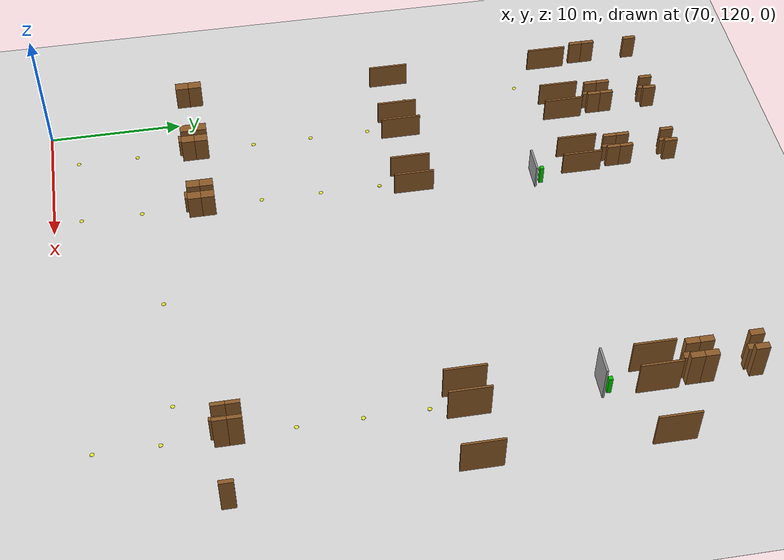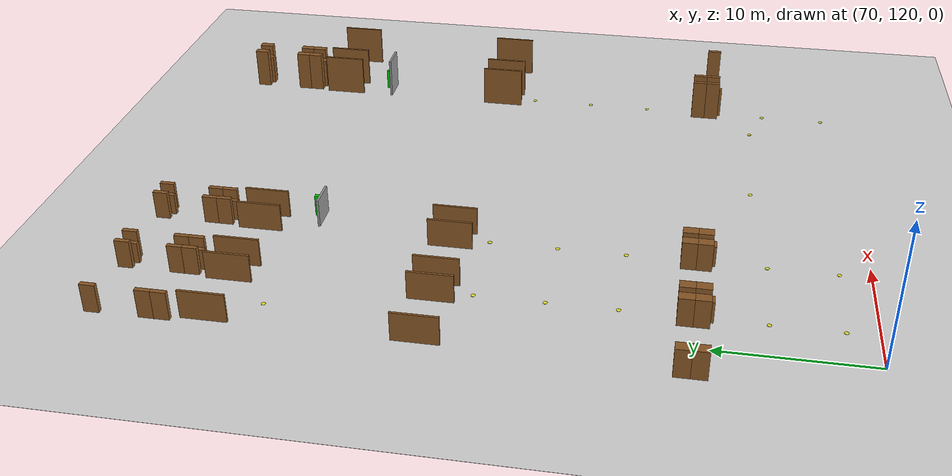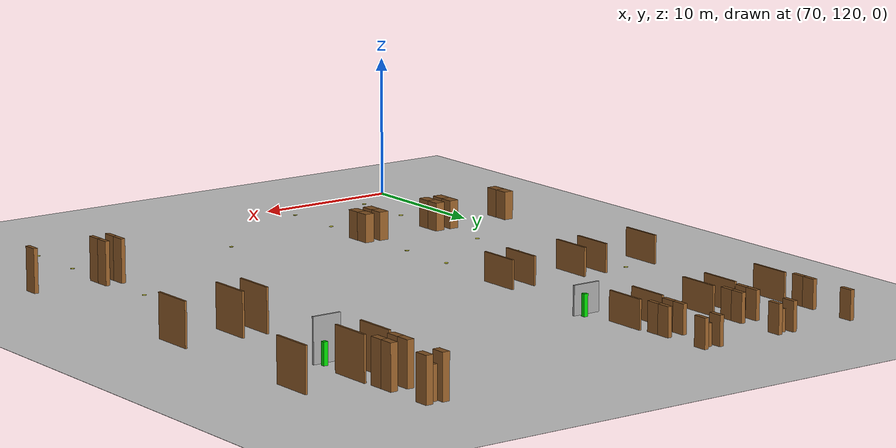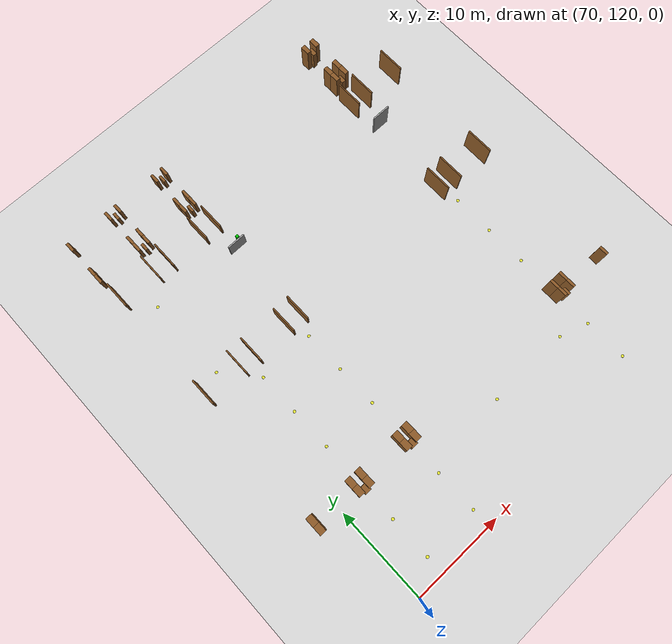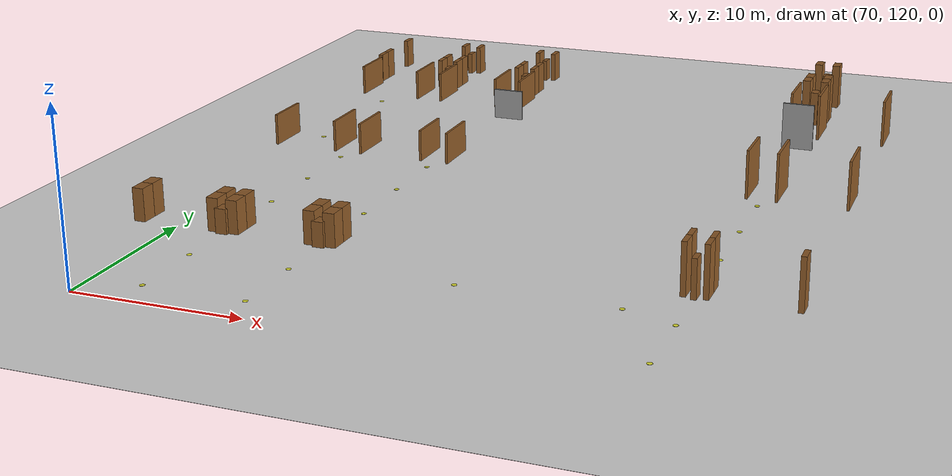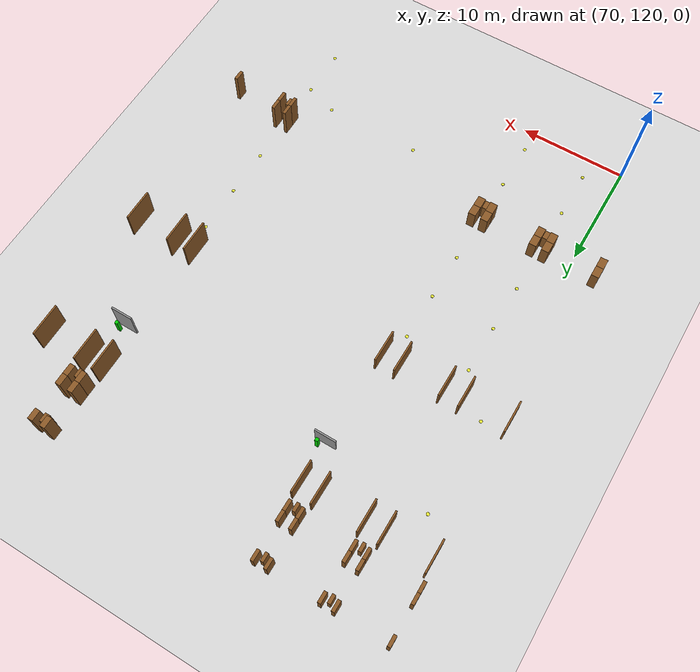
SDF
<sdf version="1.9">
 <world name="realistic_warehouse_150x200m">
  <model name="ground_plane">
   <static>true</static>
   <pose>68.5 102.0 0 0 0 0</pose>
   <link name="ground_link">
    <visual name="ground_visual">
     <geometry><box><size>127.0 194.0 0.01</size></box></geometry>
     <material><ambient>0.85 0.85 0.85 1.0</ambient><diffuse>0.85 0.85 0.85 1.0</diffuse></material>
    </visual>
    <collision name="ground_visual_collision">
     <geometry><box><size>127.0 194.0 0.01</size></box></geometry>
    </collision>
    <collision name="ground_collision">
     <geometry><plane><normal>0 0 1</normal><size>127.0 194.0</size></plane></geometry>
    </collision>
   </link>
  </model>
  <model name="dock_wall_Zone_B_C2_228">
   <static>true</static>
   <pose>80.0 156.2 1.0 0 0 0</pose>
   <link name="dock_wall_Zone_B_C2_228_link">
    <visual name="dock_wall_Zone_B_C2_228_vis">
     <geometry><box><size>2.0 0.15 2.0</size></box></geometry>
     <material><ambient>0.6 0.6 0.6 1.0</ambient><diffuse>0.6 0.6 0.6 1.0</diffuse></material>
    </visual>
    <collision name="dock_wall_Zone_B_C2_228_vis_collision">
     <geometry><box><size>2.0 0.15 2.0</size></box></geometry>
    </collision>
   </link>
  </model>
  <model name="charger_Zone_B_C2_229">
   <static>true</static>
   <pose>80.5 156.7 0.75 0 0 0</pose>
   <link name="charger_Zone_B_C2_229_link">
    <visual name="charger_Zone_B_C2_229_vis">
     <geometry><box><size>0.3 0.3 1.5</size></box></geometry>
     <material><ambient>0.0 0.8 0.0 1.0</ambient><diffuse>0.0 0.8 0.0 1.0</diffuse></material>
    </visual>
    <collision name="charger_Zone_B_C2_229_vis_collision">
     <geometry><box><size>0.3 0.3 1.5</size></box></geometry>
    </collision>
   </link>
  </model>
  <model name="cross_Zone_B_entry_230">
   <static>true</static>
   <pose>70.0 157.0 0.01 0 0 0</pose>
   <link name="cross_Zone_B_entry_230_link">
    <visual name="cross_Zone_B_entry_230_vis">
     <geometry><cylinder><radius>0.15</radius><length>0.02</length></cylinder></geometry>
     <material><ambient>0.9 0.9 0.2 1.0</ambient><diffuse>0.9 0.9 0.2 1.0</diffuse></material>
    </visual>
    <collision name="cross_Zone_B_entry_230_vis_collision">
     <geometry><cylinder><radius>0.15</radius><length>0.02</length></cylinder></geometry>
    </collision>
   </link>
  </model>
  <model name="aisle_R_Zone_B_A2_entry_320">
   <static>true</static>
   <pose>67.9 160.0 1.0 0 0 0</pose>
   <link name="aisle_R_Zone_B_A2_entry_320_link">
    <visual name="aisle_R_Zone_B_A2_entry_320_vis">
     <geometry><box><size>0.15 3.0 2.0</size></box></geometry>
     <material><ambient>0.55 0.35 0.15 1.0</ambient><diffuse>0.55 0.35 0.15 1.0</diffuse></material>
    </visual>
    <collision name="aisle_R_Zone_B_A2_entry_320_vis_collision">
     <geometry><box><size>0.15 3.0 2.0</size></box></geometry>
    </collision>
   </link>
  </model>
  <model name="rack_Zone_B_A2_S0_323">
   <static>true</static>
   <pose>67.6 162.5 1.0 0 0 0</pose>
   <link name="rack_Zone_B_A2_S0_323_link">
    <visual name="rack_Zone_B_A2_S0_323_vis">
     <geometry><box><size>0.3 1.0 2.0</size></box></geometry>
     <material><ambient>0.55 0.35 0.15 1.0</ambient><diffuse>0.55 0.35 0.15 1.0</diffuse></material>
    </visual>
    <collision name="rack_Zone_B_A2_S0_323_vis_collision">
     <geometry><box><size>0.3 1.0 2.0</size></box></geometry>
    </collision>
   </link>
  </model>
  <model name="rack_Zone_B_A2_S0_324">
   <static>true</static>
   <pose>67.6 163.5 1.0 0 0 0</pose>
   <link name="rack_Zone_B_A2_S0_324_link">
    <visual name="rack_Zone_B_A2_S0_324_vis">
     <geometry><box><size>0.3 1.0 2.0</size></box></geometry>
     <material><ambient>0.55 0.35 0.15 1.0</ambient><diffuse>0.55 0.35 0.15 1.0</diffuse></material>
    </visual>
    <collision name="rack_Zone_B_A2_S0_324_vis_collision">
     <geometry><box><size>0.3 1.0 2.0</size></box></geometry>
    </collision>
   </link>
  </model>
  <model name="rack_Zone_B_A2_S1_328">
   <static>true</static>
   <pose>67.6 167.0 1.0 0 0 0</pose>
   <link name="rack_Zone_B_A2_S1_328_link">
    <visual name="rack_Zone_B_A2_S1_328_vis">
     <geometry><box><size>0.3 1.0 2.0</size></box></geometry>
     <material><ambient>0.55 0.35 0.15 1.0</ambient><diffuse>0.55 0.35 0.15 1.0</diffuse></material>
    </visual>
    <collision name="rack_Zone_B_A2_S1_328_vis_collision">
     <geometry><box><size>0.3 1.0 2.0</size></box></geometry>
    </collision>
   </link>
  </model>
  <model name="aisle_L_Zone_B_A3_entry_363">
   <static>true</static>
   <pose>72.1 160.0 1.0 0 0 0</pose>
   <link name="aisle_L_Zone_B_A3_entry_363_link">
    <visual name="aisle_L_Zone_B_A3_entry_363_vis">
     <geometry><box><size>0.15 3.0 2.0</size></box></geometry>
     <material><ambient>0.55 0.35 0.15 1.0</ambient><diffuse>0.55 0.35 0.15 1.0</diffuse></material>
    </visual>
    <collision name="aisle_L_Zone_B_A3_entry_363_vis_collision">
     <geometry><box><size>0.15 3.0 2.0</size></box></geometry>
    </collision>
   </link>
  </model>
  <model name="aisle_R_Zone_B_A3_entry_364">
   <static>true</static>
   <pose>73.9 160.0 1.0 0 0 0</pose>
   <link name="aisle_R_Zone_B_A3_entry_364_link">
    <visual name="aisle_R_Zone_B_A3_entry_364_vis">
     <geometry><box><size>0.15 3.0 2.0</size></box></geometry>
     <material><ambient>0.55 0.35 0.15 1.0</ambient><diffuse>0.55 0.35 0.15 1.0</diffuse></material>
    </visual>
    <collision name="aisle_R_Zone_B_A3_entry_364_vis_collision">
     <geometry><box><size>0.15 3.0 2.0</size></box></geometry>
    </collision>
   </link>
  </model>
  <model name="rack_Zone_B_A3_S0_365">
   <static>true</static>
   <pose>72.4 162.5 1.0 0 0 0</pose>
   <link name="rack_Zone_B_A3_S0_365_link">
    <visual name="rack_Zone_B_A3_S0_365_vis">
     <geometry><box><size>0.3 1.0 2.0</size></box></geometry>
     <material><ambient>0.55 0.35 0.15 1.0</ambient><diffuse>0.55 0.35 0.15 1.0</diffuse></material>
    </visual>
    <collision name="rack_Zone_B_A3_S0_365_vis_collision">
     <geometry><box><size>0.3 1.0 2.0</size></box></geometry>
    </collision>
   </link>
  </model>
  <model name="rack_Zone_B_A3_S0_366">
   <static>true</static>
   <pose>72.4 163.5 1.0 0 0 0</pose>
   <link name="rack_Zone_B_A3_S0_366_link">
    <visual name="rack_Zone_B_A3_S0_366_vis">
     <geometry><box><size>0.3 1.0 2.0</size></box></geometry>
     <material><ambient>0.55 0.35 0.15 1.0</ambient><diffuse>0.55 0.35 0.15 1.0</diffuse></material>
    </visual>
    <collision name="rack_Zone_B_A3_S0_366_vis_collision">
     <geometry><box><size>0.3 1.0 2.0</size></box></geometry>
    </collision>
   </link>
  </model>
  <model name="rack_Zone_B_A3_S0_367">
   <static>true</static>
   <pose>73.6 162.5 1.0 0 0 0</pose>
   <link name="rack_Zone_B_A3_S0_367_link">
    <visual name="rack_Zone_B_A3_S0_367_vis">
     <geometry><box><size>0.3 1.0 2.0</size></box></geometry>
     <material><ambient>0.55 0.35 0.15 1.0</ambient><diffuse>0.55 0.35 0.15 1.0</diffuse></material>
    </visual>
    <collision name="rack_Zone_B_A3_S0_367_vis_collision">
     <geometry><box><size>0.3 1.0 2.0</size></box></geometry>
    </collision>
   </link>
  </model>
  <model name="rack_Zone_B_A3_S0_368">
   <static>true</static>
   <pose>73.6 163.5 1.0 0 0 0</pose>
   <link name="rack_Zone_B_A3_S0_368_link">
    <visual name="rack_Zone_B_A3_S0_368_vis">
     <geometry><box><size>0.3 1.0 2.0</size></box></geometry>
     <material><ambient>0.55 0.35 0.15 1.0</ambient><diffuse>0.55 0.35 0.15 1.0</diffuse></material>
    </visual>
    <collision name="rack_Zone_B_A3_S0_368_vis_collision">
     <geometry><box><size>0.3 1.0 2.0</size></box></geometry>
    </collision>
   </link>
  </model>
  <model name="rack_Zone_B_A3_S0_369">
   <static>true</static>
   <pose>73.0 162.2 0.75 0 0 0</pose>
   <link name="rack_Zone_B_A3_S0_369_link">
    <visual name="rack_Zone_B_A3_S0_369_vis">
     <geometry><box><size>0.3 0.8 1.5</size></box></geometry>
     <material><ambient>0.55 0.35 0.15 1.0</ambient><diffuse>0.55 0.35 0.15 1.0</diffuse></material>
    </visual>
    <collision name="rack_Zone_B_A3_S0_369_vis_collision">
     <geometry><box><size>0.3 0.8 1.5</size></box></geometry>
    </collision>
   </link>
  </model>
  <model name="rack_Zone_B_A3_S1_370">
   <static>true</static>
   <pose>72.4 167.0 1.0 0 0 0</pose>
   <link name="rack_Zone_B_A3_S1_370_link">
    <visual name="rack_Zone_B_A3_S1_370_vis">
     <geometry><box><size>0.3 1.0 2.0</size></box></geometry>
     <material><ambient>0.55 0.35 0.15 1.0</ambient><diffuse>0.55 0.35 0.15 1.0</diffuse></material>
    </visual>
    <collision name="rack_Zone_B_A3_S1_370_vis_collision">
     <geometry><box><size>0.3 1.0 2.0</size></box></geometry>
    </collision>
   </link>
  </model>
  <model name="rack_Zone_B_A3_S1_372">
   <static>true</static>
   <pose>73.6 167.0 1.0 0 0 0</pose>
   <link name="rack_Zone_B_A3_S1_372_link">
    <visual name="rack_Zone_B_A3_S1_372_vis">
     <geometry><box><size>0.3 1.0 2.0</size></box></geometry>
     <material><ambient>0.55 0.35 0.15 1.0</ambient><diffuse>0.55 0.35 0.15 1.0</diffuse></material>
    </visual>
    <collision name="rack_Zone_B_A3_S1_372_vis_collision">
     <geometry><box><size>0.3 1.0 2.0</size></box></geometry>
    </collision>
   </link>
  </model>
  <model name="rack_Zone_B_A3_S1_374">
   <static>true</static>
   <pose>73.0 166.7 0.75 0 0 0</pose>
   <link name="rack_Zone_B_A3_S1_374_link">
    <visual name="rack_Zone_B_A3_S1_374_vis">
     <geometry><box><size>0.3 0.8 1.5</size></box></geometry>
     <material><ambient>0.55 0.35 0.15 1.0</ambient><diffuse>0.55 0.35 0.15 1.0</diffuse></material>
    </visual>
    <collision name="rack_Zone_B_A3_S1_374_vis_collision">
     <geometry><box><size>0.3 0.8 1.5</size></box></geometry>
    </collision>
   </link>
  </model>
  <model name="aisle_L_Zone_B_A4_entry_407">
   <static>true</static>
   <pose>78.1 160.0 1.0 0 0 0</pose>
   <link name="aisle_L_Zone_B_A4_entry_407_link">
    <visual name="aisle_L_Zone_B_A4_entry_407_vis">
     <geometry><box><size>0.15 3.0 2.0</size></box></geometry>
     <material><ambient>0.55 0.35 0.15 1.0</ambient><diffuse>0.55 0.35 0.15 1.0</diffuse></material>
    </visual>
    <collision name="aisle_L_Zone_B_A4_entry_407_vis_collision">
     <geometry><box><size>0.15 3.0 2.0</size></box></geometry>
    </collision>
   </link>
  </model>
  <model name="aisle_R_Zone_B_A4_entry_408">
   <static>true</static>
   <pose>79.9 160.0 1.0 0 0 0</pose>
   <link name="aisle_R_Zone_B_A4_entry_408_link">
    <visual name="aisle_R_Zone_B_A4_entry_408_vis">
     <geometry><box><size>0.15 3.0 2.0</size></box></geometry>
     <material><ambient>0.55 0.35 0.15 1.0</ambient><diffuse>0.55 0.35 0.15 1.0</diffuse></material>
    </visual>
    <collision name="aisle_R_Zone_B_A4_entry_408_vis_collision">
     <geometry><box><size>0.15 3.0 2.0</size></box></geometry>
    </collision>
   </link>
  </model>
  <model name="rack_Zone_B_A4_S0_409">
   <static>true</static>
   <pose>78.4 162.5 1.0 0 0 0</pose>
   <link name="rack_Zone_B_A4_S0_409_link">
    <visual name="rack_Zone_B_A4_S0_409_vis">
     <geometry><box><size>0.3 1.0 2.0</size></box></geometry>
     <material><ambient>0.55 0.35 0.15 1.0</ambient><diffuse>0.55 0.35 0.15 1.0</diffuse></material>
    </visual>
    <collision name="rack_Zone_B_A4_S0_409_vis_collision">
     <geometry><box><size>0.3 1.0 2.0</size></box></geometry>
    </collision>
   </link>
  </model>
  <model name="rack_Zone_B_A4_S0_410">
   <static>true</static>
   <pose>78.4 163.5 1.0 0 0 0</pose>
   <link name="rack_Zone_B_A4_S0_410_link">
    <visual name="rack_Zone_B_A4_S0_410_vis">
     <geometry><box><size>0.3 1.0 2.0</size></box></geometry>
     <material><ambient>0.55 0.35 0.15 1.0</ambient><diffuse>0.55 0.35 0.15 1.0</diffuse></material>
    </visual>
    <collision name="rack_Zone_B_A4_S0_410_vis_collision">
     <geometry><box><size>0.3 1.0 2.0</size></box></geometry>
    </collision>
   </link>
  </model>
  <model name="rack_Zone_B_A4_S0_411">
   <static>true</static>
   <pose>79.6 162.5 1.0 0 0 0</pose>
   <link name="rack_Zone_B_A4_S0_411_link">
    <visual name="rack_Zone_B_A4_S0_411_vis">
     <geometry><box><size>0.3 1.0 2.0</size></box></geometry>
     <material><ambient>0.55 0.35 0.15 1.0</ambient><diffuse>0.55 0.35 0.15 1.0</diffuse></material>
    </visual>
    <collision name="rack_Zone_B_A4_S0_411_vis_collision">
     <geometry><box><size>0.3 1.0 2.0</size></box></geometry>
    </collision>
   </link>
  </model>
  <model name="rack_Zone_B_A4_S0_412">
   <static>true</static>
   <pose>79.6 163.5 1.0 0 0 0</pose>
   <link name="rack_Zone_B_A4_S0_412_link">
    <visual name="rack_Zone_B_A4_S0_412_vis">
     <geometry><box><size>0.3 1.0 2.0</size></box></geometry>
     <material><ambient>0.55 0.35 0.15 1.0</ambient><diffuse>0.55 0.35 0.15 1.0</diffuse></material>
    </visual>
    <collision name="rack_Zone_B_A4_S0_412_vis_collision">
     <geometry><box><size>0.3 1.0 2.0</size></box></geometry>
    </collision>
   </link>
  </model>
  <model name="rack_Zone_B_A4_S0_413">
   <static>true</static>
   <pose>79.0 162.2 0.75 0 0 0</pose>
   <link name="rack_Zone_B_A4_S0_413_link">
    <visual name="rack_Zone_B_A4_S0_413_vis">
     <geometry><box><size>0.3 0.8 1.5</size></box></geometry>
     <material><ambient>0.55 0.35 0.15 1.0</ambient><diffuse>0.55 0.35 0.15 1.0</diffuse></material>
    </visual>
    <collision name="rack_Zone_B_A4_S0_413_vis_collision">
     <geometry><box><size>0.3 0.8 1.5</size></box></geometry>
    </collision>
   </link>
  </model>
  <model name="rack_Zone_B_A4_S1_414">
   <static>true</static>
   <pose>78.4 167.0 1.0 0 0 0</pose>
   <link name="rack_Zone_B_A4_S1_414_link">
    <visual name="rack_Zone_B_A4_S1_414_vis">
     <geometry><box><size>0.3 1.0 2.0</size></box></geometry>
     <material><ambient>0.55 0.35 0.15 1.0</ambient><diffuse>0.55 0.35 0.15 1.0</diffuse></material>
    </visual>
    <collision name="rack_Zone_B_A4_S1_414_vis_collision">
     <geometry><box><size>0.3 1.0 2.0</size></box></geometry>
    </collision>
   </link>
  </model>
  <model name="rack_Zone_B_A4_S1_416">
   <static>true</static>
   <pose>79.6 167.0 1.0 0 0 0</pose>
   <link name="rack_Zone_B_A4_S1_416_link">
    <visual name="rack_Zone_B_A4_S1_416_vis">
     <geometry><box><size>0.3 1.0 2.0</size></box></geometry>
     <material><ambient>0.55 0.35 0.15 1.0</ambient><diffuse>0.55 0.35 0.15 1.0</diffuse></material>
    </visual>
    <collision name="rack_Zone_B_A4_S1_416_vis_collision">
     <geometry><box><size>0.3 1.0 2.0</size></box></geometry>
    </collision>
   </link>
  </model>
  <model name="rack_Zone_B_A4_S1_418">
   <static>true</static>
   <pose>79.0 166.7 0.75 0 0 0</pose>
   <link name="rack_Zone_B_A4_S1_418_link">
    <visual name="rack_Zone_B_A4_S1_418_vis">
     <geometry><box><size>0.3 0.8 1.5</size></box></geometry>
     <material><ambient>0.55 0.35 0.15 1.0</ambient><diffuse>0.55 0.35 0.15 1.0</diffuse></material>
    </visual>
    <collision name="rack_Zone_B_A4_S1_418_vis_collision">
     <geometry><box><size>0.3 0.8 1.5</size></box></geometry>
    </collision>
   </link>
  </model>
  <model name="dock_wall_Zone_C_C1_451">
   <static>true</static>
   <pose>100.0 156.2 1.5 0 0 0</pose>
   <link name="dock_wall_Zone_C_C1_451_link">
    <visual name="dock_wall_Zone_C_C1_451_vis">
     <geometry><box><size>2.0 0.15 3.0</size></box></geometry>
     <material><ambient>0.6 0.6 0.6 1.0</ambient><diffuse>0.6 0.6 0.6 1.0</diffuse></material>
    </visual>
    <collision name="dock_wall_Zone_C_C1_451_vis_collision">
     <geometry><box><size>2.0 0.15 3.0</size></box></geometry>
    </collision>
   </link>
  </model>
  <model name="charger_Zone_C_C1_452">
   <static>true</static>
   <pose>100.5 156.7 0.75 0 0 0</pose>
   <link name="charger_Zone_C_C1_452_link">
    <visual name="charger_Zone_C_C1_452_vis">
     <geometry><box><size>0.3 0.3 1.5</size></box></geometry>
     <material><ambient>0.0 0.8 0.0 1.0</ambient><diffuse>0.0 0.8 0.0 1.0</diffuse></material>
    </visual>
    <collision name="charger_Zone_C_C1_452_vis_collision">
     <geometry><box><size>0.3 0.3 1.5</size></box></geometry>
    </collision>
   </link>
  </model>
  <model name="aisle_L_Zone_C_A0_entry_456">
   <static>true</static>
   <pose>99.1 160.0 1.5 0 0 0</pose>
   <link name="aisle_L_Zone_C_A0_entry_456_link">
    <visual name="aisle_L_Zone_C_A0_entry_456_vis">
     <geometry><box><size>0.15 3.0 3.0</size></box></geometry>
     <material><ambient>0.55 0.35 0.15 1.0</ambient><diffuse>0.55 0.35 0.15 1.0</diffuse></material>
    </visual>
    <collision name="aisle_L_Zone_C_A0_entry_456_vis_collision">
     <geometry><box><size>0.15 3.0 3.0</size></box></geometry>
    </collision>
   </link>
  </model>
  <model name="aisle_R_Zone_C_A0_entry_457">
   <static>true</static>
   <pose>100.9 160.0 1.5 0 0 0</pose>
   <link name="aisle_R_Zone_C_A0_entry_457_link">
    <visual name="aisle_R_Zone_C_A0_entry_457_vis">
     <geometry><box><size>0.15 3.0 3.0</size></box></geometry>
     <material><ambient>0.55 0.35 0.15 1.0</ambient><diffuse>0.55 0.35 0.15 1.0</diffuse></material>
    </visual>
    <collision name="aisle_R_Zone_C_A0_entry_457_vis_collision">
     <geometry><box><size>0.15 3.0 3.0</size></box></geometry>
    </collision>
   </link>
  </model>
  <model name="rack_Zone_C_A0_S0_458">
   <static>true</static>
   <pose>99.4 162.5 1.5 0 0 0</pose>
   <link name="rack_Zone_C_A0_S0_458_link">
    <visual name="rack_Zone_C_A0_S0_458_vis">
     <geometry><box><size>0.5 1.0 3.0</size></box></geometry>
     <material><ambient>0.55 0.35 0.15 1.0</ambient><diffuse>0.55 0.35 0.15 1.0</diffuse></material>
    </visual>
    <collision name="rack_Zone_C_A0_S0_458_vis_collision">
     <geometry><box><size>0.5 1.0 3.0</size></box></geometry>
    </collision>
   </link>
  </model>
  <model name="rack_Zone_C_A0_S0_459">
   <static>true</static>
   <pose>99.4 163.5 1.5 0 0 0</pose>
   <link name="rack_Zone_C_A0_S0_459_link">
    <visual name="rack_Zone_C_A0_S0_459_vis">
     <geometry><box><size>0.5 1.0 3.0</size></box></geometry>
     <material><ambient>0.55 0.35 0.15 1.0</ambient><diffuse>0.55 0.35 0.15 1.0</diffuse></material>
    </visual>
    <collision name="rack_Zone_C_A0_S0_459_vis_collision">
     <geometry><box><size>0.5 1.0 3.0</size></box></geometry>
    </collision>
   </link>
  </model>
  <model name="rack_Zone_C_A0_S0_460">
   <static>true</static>
   <pose>100.6 162.5 1.5 0 0 0</pose>
   <link name="rack_Zone_C_A0_S0_460_link">
    <visual name="rack_Zone_C_A0_S0_460_vis">
     <geometry><box><size>0.5 1.0 3.0</size></box></geometry>
     <material><ambient>0.55 0.35 0.15 1.0</ambient><diffuse>0.55 0.35 0.15 1.0</diffuse></material>
    </visual>
    <collision name="rack_Zone_C_A0_S0_460_vis_collision">
     <geometry><box><size>0.5 1.0 3.0</size></box></geometry>
    </collision>
   </link>
  </model>
  <model name="rack_Zone_C_A0_S0_461">
   <static>true</static>
   <pose>100.6 163.5 1.5 0 0 0</pose>
   <link name="rack_Zone_C_A0_S0_461_link">
    <visual name="rack_Zone_C_A0_S0_461_vis">
     <geometry><box><size>0.5 1.0 3.0</size></box></geometry>
     <material><ambient>0.55 0.35 0.15 1.0</ambient><diffuse>0.55 0.35 0.15 1.0</diffuse></material>
    </visual>
    <collision name="rack_Zone_C_A0_S0_461_vis_collision">
     <geometry><box><size>0.5 1.0 3.0</size></box></geometry>
    </collision>
   </link>
  </model>
  <model name="rack_Zone_C_A0_S0_462">
   <static>true</static>
   <pose>100.0 162.2 1.125 0 0 0</pose>
   <link name="rack_Zone_C_A0_S0_462_link">
    <visual name="rack_Zone_C_A0_S0_462_vis">
     <geometry><box><size>0.5 0.8 2.25</size></box></geometry>
     <material><ambient>0.55 0.35 0.15 1.0</ambient><diffuse>0.55 0.35 0.15 1.0</diffuse></material>
    </visual>
    <collision name="rack_Zone_C_A0_S0_462_vis_collision">
     <geometry><box><size>0.5 0.8 2.25</size></box></geometry>
    </collision>
   </link>
  </model>
  <model name="rack_Zone_C_A0_S1_463">
   <static>true</static>
   <pose>99.4 167.0 1.5 0 0 0</pose>
   <link name="rack_Zone_C_A0_S1_463_link">
    <visual name="rack_Zone_C_A0_S1_463_vis">
     <geometry><box><size>0.5 1.0 3.0</size></box></geometry>
     <material><ambient>0.55 0.35 0.15 1.0</ambient><diffuse>0.55 0.35 0.15 1.0</diffuse></material>
    </visual>
    <collision name="rack_Zone_C_A0_S1_463_vis_collision">
     <geometry><box><size>0.5 1.0 3.0</size></box></geometry>
    </collision>
   </link>
  </model>
  <model name="rack_Zone_C_A0_S1_465">
   <static>true</static>
   <pose>100.6 167.0 1.5 0 0 0</pose>
   <link name="rack_Zone_C_A0_S1_465_link">
    <visual name="rack_Zone_C_A0_S1_465_vis">
     <geometry><box><size>0.5 1.0 3.0</size></box></geometry>
     <material><ambient>0.55 0.35 0.15 1.0</ambient><diffuse>0.55 0.35 0.15 1.0</diffuse></material>
    </visual>
    <collision name="rack_Zone_C_A0_S1_465_vis_collision">
     <geometry><box><size>0.5 1.0 3.0</size></box></geometry>
    </collision>
   </link>
  </model>
  <model name="rack_Zone_C_A0_S1_467">
   <static>true</static>
   <pose>100.0 166.7 1.125 0 0 0</pose>
   <link name="rack_Zone_C_A0_S1_467_link">
    <visual name="rack_Zone_C_A0_S1_467_vis">
     <geometry><box><size>0.5 0.8 2.25</size></box></geometry>
     <material><ambient>0.55 0.35 0.15 1.0</ambient><diffuse>0.55 0.35 0.15 1.0</diffuse></material>
    </visual>
    <collision name="rack_Zone_C_A0_S1_467_vis_collision">
     <geometry><box><size>0.5 0.8 2.25</size></box></geometry>
    </collision>
   </link>
  </model>
  <model name="aisle_L_Zone_C_A1_entry_500">
   <static>true</static>
   <pose>105.1 160.0 1.5 0 0 0</pose>
   <link name="aisle_L_Zone_C_A1_entry_500_link">
    <visual name="aisle_L_Zone_C_A1_entry_500_vis">
     <geometry><box><size>0.15 3.0 3.0</size></box></geometry>
     <material><ambient>0.55 0.35 0.15 1.0</ambient><diffuse>0.55 0.35 0.15 1.0</diffuse></material>
    </visual>
    <collision name="aisle_L_Zone_C_A1_entry_500_vis_collision">
     <geometry><box><size>0.15 3.0 3.0</size></box></geometry>
    </collision>
   </link>
  </model>
  <model name="rack_Zone_E_A2_S4_838">
   <static>true</static>
   <pose>67.6 130.5 1.0 0 0 0</pose>
   <link name="rack_Zone_E_A2_S4_838_link">
    <visual name="rack_Zone_E_A2_S4_838_vis">
     <geometry><box><size>0.7 1.0 2.0</size></box></geometry>
     <material><ambient>0.55 0.35 0.15 1.0</ambient><diffuse>0.55 0.35 0.15 1.0</diffuse></material>
    </visual>
    <collision name="rack_Zone_E_A2_S4_838_vis_collision">
     <geometry><box><size>0.7 1.0 2.0</size></box></geometry>
    </collision>
   </link>
  </model>
  <model name="rack_Zone_E_A2_S4_839">
   <static>true</static>
   <pose>67.6 131.5 1.0 0 0 0</pose>
   <link name="rack_Zone_E_A2_S4_839_link">
    <visual name="rack_Zone_E_A2_S4_839_vis">
     <geometry><box><size>0.7 1.0 2.0</size></box></geometry>
     <material><ambient>0.55 0.35 0.15 1.0</ambient><diffuse>0.55 0.35 0.15 1.0</diffuse></material>
    </visual>
    <collision name="rack_Zone_E_A2_S4_839_vis_collision">
     <geometry><box><size>0.7 1.0 2.0</size></box></geometry>
    </collision>
   </link>
  </model>
  <model name="aisle_R_Zone_E_A2_exit_845">
   <static>true</static>
   <pose>67.9 147.0 1.0 0 0 0</pose>
   <link name="aisle_R_Zone_E_A2_exit_845_link">
    <visual name="aisle_R_Zone_E_A2_exit_845_vis">
     <geometry><box><size>0.15 3.0 2.0</size></box></geometry>
     <material><ambient>0.55 0.35 0.15 1.0</ambient><diffuse>0.55 0.35 0.15 1.0</diffuse></material>
    </visual>
    <collision name="aisle_R_Zone_E_A2_exit_845_vis_collision">
     <geometry><box><size>0.15 3.0 2.0</size></box></geometry>
    </collision>
   </link>
  </model>
  <model name="gap_Zone_E_A3_S2_854">
   <static>true</static>
   <pose>73.0 122.0 0.01 0 0 0</pose>
   <link name="gap_Zone_E_A3_S2_854_link">
    <visual name="gap_Zone_E_A3_S2_854_vis">
     <geometry><cylinder><radius>0.15</radius><length>0.02</length></cylinder></geometry>
     <material><ambient>0.9 0.9 0.2 1.0</ambient><diffuse>0.9 0.9 0.2 1.0</diffuse></material>
    </visual>
    <collision name="gap_Zone_E_A3_S2_854_vis_collision">
     <geometry><cylinder><radius>0.15</radius><length>0.02</length></cylinder></geometry>
    </collision>
   </link>
  </model>
  <model name="cross_Zone_E_A3_S3_855">
   <static>true</static>
   <pose>73.0 126.5 0.01 0 0 0</pose>
   <link name="cross_Zone_E_A3_S3_855_link">
    <visual name="cross_Zone_E_A3_S3_855_vis">
     <geometry><cylinder><radius>0.15</radius><length>0.02</length></cylinder></geometry>
     <material><ambient>0.9 0.9 0.2 1.0</ambient><diffuse>0.9 0.9 0.2 1.0</diffuse></material>
    </visual>
    <collision name="cross_Zone_E_A3_S3_855_vis_collision">
     <geometry><cylinder><radius>0.15</radius><length>0.02</length></cylinder></geometry>
    </collision>
   </link>
  </model>
  <model name="rack_Zone_E_A3_S4_856">
   <static>true</static>
   <pose>72.4 130.5 1.0 0 0 0</pose>
   <link name="rack_Zone_E_A3_S4_856_link">
    <visual name="rack_Zone_E_A3_S4_856_vis">
     <geometry><box><size>0.7 1.0 2.0</size></box></geometry>
     <material><ambient>0.55 0.35 0.15 1.0</ambient><diffuse>0.55 0.35 0.15 1.0</diffuse></material>
    </visual>
    <collision name="rack_Zone_E_A3_S4_856_vis_collision">
     <geometry><box><size>0.7 1.0 2.0</size></box></geometry>
    </collision>
   </link>
  </model>
  <model name="rack_Zone_E_A3_S4_857">
   <static>true</static>
   <pose>72.4 131.5 1.0 0 0 0</pose>
   <link name="rack_Zone_E_A3_S4_857_link">
    <visual name="rack_Zone_E_A3_S4_857_vis">
     <geometry><box><size>0.7 1.0 2.0</size></box></geometry>
     <material><ambient>0.55 0.35 0.15 1.0</ambient><diffuse>0.55 0.35 0.15 1.0</diffuse></material>
    </visual>
    <collision name="rack_Zone_E_A3_S4_857_vis_collision">
     <geometry><box><size>0.7 1.0 2.0</size></box></geometry>
    </collision>
   </link>
  </model>
  <model name="rack_Zone_E_A3_S4_858">
   <static>true</static>
   <pose>73.6 130.5 1.0 0 0 0</pose>
   <link name="rack_Zone_E_A3_S4_858_link">
    <visual name="rack_Zone_E_A3_S4_858_vis">
     <geometry><box><size>0.7 1.0 2.0</size></box></geometry>
     <material><ambient>0.55 0.35 0.15 1.0</ambient><diffuse>0.55 0.35 0.15 1.0</diffuse></material>
    </visual>
    <collision name="rack_Zone_E_A3_S4_858_vis_collision">
     <geometry><box><size>0.7 1.0 2.0</size></box></geometry>
    </collision>
   </link>
  </model>
  <model name="rack_Zone_E_A3_S4_859">
   <static>true</static>
   <pose>73.6 131.5 1.0 0 0 0</pose>
   <link name="rack_Zone_E_A3_S4_859_link">
    <visual name="rack_Zone_E_A3_S4_859_vis">
     <geometry><box><size>0.7 1.0 2.0</size></box></geometry>
     <material><ambient>0.55 0.35 0.15 1.0</ambient><diffuse>0.55 0.35 0.15 1.0</diffuse></material>
    </visual>
    <collision name="rack_Zone_E_A3_S4_859_vis_collision">
     <geometry><box><size>0.7 1.0 2.0</size></box></geometry>
    </collision>
   </link>
  </model>
  <model name="rack_Zone_E_A3_S4_860">
   <static>true</static>
   <pose>73.0 130.2 0.75 0 0 0</pose>
   <link name="rack_Zone_E_A3_S4_860_link">
    <visual name="rack_Zone_E_A3_S4_860_vis">
     <geometry><box><size>0.7 0.8 1.5</size></box></geometry>
     <material><ambient>0.55 0.35 0.15 1.0</ambient><diffuse>0.55 0.35 0.15 1.0</diffuse></material>
    </visual>
    <collision name="rack_Zone_E_A3_S4_860_vis_collision">
     <geometry><box><size>0.7 0.8 1.5</size></box></geometry>
    </collision>
   </link>
  </model>
  <model name="cross_Zone_E_A3_S5_861">
   <static>true</static>
   <pose>73.0 135.5 0.01 0 0 0</pose>
   <link name="cross_Zone_E_A3_S5_861_link">
    <visual name="cross_Zone_E_A3_S5_861_vis">
     <geometry><cylinder><radius>0.15</radius><length>0.02</length></cylinder></geometry>
     <material><ambient>0.9 0.9 0.2 1.0</ambient><diffuse>0.9 0.9 0.2 1.0</diffuse></material>
    </visual>
    <collision name="cross_Zone_E_A3_S5_861_vis_collision">
     <geometry><cylinder><radius>0.15</radius><length>0.02</length></cylinder></geometry>
    </collision>
   </link>
  </model>
  <model name="gap_Zone_E_A3_S6_862">
   <static>true</static>
   <pose>73.0 140.0 0.01 0 0 0</pose>
   <link name="gap_Zone_E_A3_S6_862_link">
    <visual name="gap_Zone_E_A3_S6_862_vis">
     <geometry><cylinder><radius>0.15</radius><length>0.02</length></cylinder></geometry>
     <material><ambient>0.9 0.9 0.2 1.0</ambient><diffuse>0.9 0.9 0.2 1.0</diffuse></material>
    </visual>
    <collision name="gap_Zone_E_A3_S6_862_vis_collision">
     <geometry><cylinder><radius>0.15</radius><length>0.02</length></cylinder></geometry>
    </collision>
   </link>
  </model>
  <model name="cross_Zone_E_A3_S7_863">
   <static>true</static>
   <pose>73.0 144.5 0.01 0 0 0</pose>
   <link name="cross_Zone_E_A3_S7_863_link">
    <visual name="cross_Zone_E_A3_S7_863_vis">
     <geometry><cylinder><radius>0.15</radius><length>0.02</length></cylinder></geometry>
     <material><ambient>0.9 0.9 0.2 1.0</ambient><diffuse>0.9 0.9 0.2 1.0</diffuse></material>
    </visual>
    <collision name="cross_Zone_E_A3_S7_863_vis_collision">
     <geometry><cylinder><radius>0.15</radius><length>0.02</length></cylinder></geometry>
    </collision>
   </link>
  </model>
  <model name="aisle_L_Zone_E_A3_exit_864">
   <static>true</static>
   <pose>72.1 147.0 1.0 0 0 0</pose>
   <link name="aisle_L_Zone_E_A3_exit_864_link">
    <visual name="aisle_L_Zone_E_A3_exit_864_vis">
     <geometry><box><size>0.15 3.0 2.0</size></box></geometry>
     <material><ambient>0.55 0.35 0.15 1.0</ambient><diffuse>0.55 0.35 0.15 1.0</diffuse></material>
    </visual>
    <collision name="aisle_L_Zone_E_A3_exit_864_vis_collision">
     <geometry><box><size>0.15 3.0 2.0</size></box></geometry>
    </collision>
   </link>
  </model>
  <model name="aisle_R_Zone_E_A3_exit_865">
   <static>true</static>
   <pose>73.9 147.0 1.0 0 0 0</pose>
   <link name="aisle_R_Zone_E_A3_exit_865_link">
    <visual name="aisle_R_Zone_E_A3_exit_865_vis">
     <geometry><box><size>0.15 3.0 2.0</size></box></geometry>
     <material><ambient>0.55 0.35 0.15 1.0</ambient><diffuse>0.55 0.35 0.15 1.0</diffuse></material>
    </visual>
    <collision name="aisle_R_Zone_E_A3_exit_865_vis_collision">
     <geometry><box><size>0.15 3.0 2.0</size></box></geometry>
    </collision>
   </link>
  </model>
  <model name="gap_Zone_E_A4_S2_874">
   <static>true</static>
   <pose>79.0 122.0 0.01 0 0 0</pose>
   <link name="gap_Zone_E_A4_S2_874_link">
    <visual name="gap_Zone_E_A4_S2_874_vis">
     <geometry><cylinder><radius>0.15</radius><length>0.02</length></cylinder></geometry>
     <material><ambient>0.9 0.9 0.2 1.0</ambient><diffuse>0.9 0.9 0.2 1.0</diffuse></material>
    </visual>
    <collision name="gap_Zone_E_A4_S2_874_vis_collision">
     <geometry><cylinder><radius>0.15</radius><length>0.02</length></cylinder></geometry>
    </collision>
   </link>
  </model>
  <model name="cross_Zone_E_A4_S3_875">
   <static>true</static>
   <pose>79.0 126.5 0.01 0 0 0</pose>
   <link name="cross_Zone_E_A4_S3_875_link">
    <visual name="cross_Zone_E_A4_S3_875_vis">
     <geometry><cylinder><radius>0.15</radius><length>0.02</length></cylinder></geometry>
     <material><ambient>0.9 0.9 0.2 1.0</ambient><diffuse>0.9 0.9 0.2 1.0</diffuse></material>
    </visual>
    <collision name="cross_Zone_E_A4_S3_875_vis_collision">
     <geometry><cylinder><radius>0.15</radius><length>0.02</length></cylinder></geometry>
    </collision>
   </link>
  </model>
  <model name="rack_Zone_E_A4_S4_876">
   <static>true</static>
   <pose>78.4 130.5 1.0 0 0 0</pose>
   <link name="rack_Zone_E_A4_S4_876_link">
    <visual name="rack_Zone_E_A4_S4_876_vis">
     <geometry><box><size>0.7 1.0 2.0</size></box></geometry>
     <material><ambient>0.55 0.35 0.15 1.0</ambient><diffuse>0.55 0.35 0.15 1.0</diffuse></material>
    </visual>
    <collision name="rack_Zone_E_A4_S4_876_vis_collision">
     <geometry><box><size>0.7 1.0 2.0</size></box></geometry>
    </collision>
   </link>
  </model>
  <model name="rack_Zone_E_A4_S4_877">
   <static>true</static>
   <pose>78.4 131.5 1.0 0 0 0</pose>
   <link name="rack_Zone_E_A4_S4_877_link">
    <visual name="rack_Zone_E_A4_S4_877_vis">
     <geometry><box><size>0.7 1.0 2.0</size></box></geometry>
     <material><ambient>0.55 0.35 0.15 1.0</ambient><diffuse>0.55 0.35 0.15 1.0</diffuse></material>
    </visual>
    <collision name="rack_Zone_E_A4_S4_877_vis_collision">
     <geometry><box><size>0.7 1.0 2.0</size></box></geometry>
    </collision>
   </link>
  </model>
  <model name="rack_Zone_E_A4_S4_878">
   <static>true</static>
   <pose>79.6 130.5 1.0 0 0 0</pose>
   <link name="rack_Zone_E_A4_S4_878_link">
    <visual name="rack_Zone_E_A4_S4_878_vis">
     <geometry><box><size>0.7 1.0 2.0</size></box></geometry>
     <material><ambient>0.55 0.35 0.15 1.0</ambient><diffuse>0.55 0.35 0.15 1.0</diffuse></material>
    </visual>
    <collision name="rack_Zone_E_A4_S4_878_vis_collision">
     <geometry><box><size>0.7 1.0 2.0</size></box></geometry>
    </collision>
   </link>
  </model>
  <model name="rack_Zone_E_A4_S4_879">
   <static>true</static>
   <pose>79.6 131.5 1.0 0 0 0</pose>
   <link name="rack_Zone_E_A4_S4_879_link">
    <visual name="rack_Zone_E_A4_S4_879_vis">
     <geometry><box><size>0.7 1.0 2.0</size></box></geometry>
     <material><ambient>0.55 0.35 0.15 1.0</ambient><diffuse>0.55 0.35 0.15 1.0</diffuse></material>
    </visual>
    <collision name="rack_Zone_E_A4_S4_879_vis_collision">
     <geometry><box><size>0.7 1.0 2.0</size></box></geometry>
    </collision>
   </link>
  </model>
  <model name="rack_Zone_E_A4_S4_880">
   <static>true</static>
   <pose>79.0 130.2 0.75 0 0 0</pose>
   <link name="rack_Zone_E_A4_S4_880_link">
    <visual name="rack_Zone_E_A4_S4_880_vis">
     <geometry><box><size>0.7 0.8 1.5</size></box></geometry>
     <material><ambient>0.55 0.35 0.15 1.0</ambient><diffuse>0.55 0.35 0.15 1.0</diffuse></material>
    </visual>
    <collision name="rack_Zone_E_A4_S4_880_vis_collision">
     <geometry><box><size>0.7 0.8 1.5</size></box></geometry>
    </collision>
   </link>
  </model>
  <model name="cross_Zone_E_A4_S5_881">
   <static>true</static>
   <pose>79.0 135.5 0.01 0 0 0</pose>
   <link name="cross_Zone_E_A4_S5_881_link">
    <visual name="cross_Zone_E_A4_S5_881_vis">
     <geometry><cylinder><radius>0.15</radius><length>0.02</length></cylinder></geometry>
     <material><ambient>0.9 0.9 0.2 1.0</ambient><diffuse>0.9 0.9 0.2 1.0</diffuse></material>
    </visual>
    <collision name="cross_Zone_E_A4_S5_881_vis_collision">
     <geometry><cylinder><radius>0.15</radius><length>0.02</length></cylinder></geometry>
    </collision>
   </link>
  </model>
  <model name="gap_Zone_E_A4_S6_882">
   <static>true</static>
   <pose>79.0 140.0 0.01 0 0 0</pose>
   <link name="gap_Zone_E_A4_S6_882_link">
    <visual name="gap_Zone_E_A4_S6_882_vis">
     <geometry><cylinder><radius>0.15</radius><length>0.02</length></cylinder></geometry>
     <material><ambient>0.9 0.9 0.2 1.0</ambient><diffuse>0.9 0.9 0.2 1.0</diffuse></material>
    </visual>
    <collision name="gap_Zone_E_A4_S6_882_vis_collision">
     <geometry><cylinder><radius>0.15</radius><length>0.02</length></cylinder></geometry>
    </collision>
   </link>
  </model>
  <model name="cross_Zone_E_A4_S7_883">
   <static>true</static>
   <pose>79.0 144.5 0.01 0 0 0</pose>
   <link name="cross_Zone_E_A4_S7_883_link">
    <visual name="cross_Zone_E_A4_S7_883_vis">
     <geometry><cylinder><radius>0.15</radius><length>0.02</length></cylinder></geometry>
     <material><ambient>0.9 0.9 0.2 1.0</ambient><diffuse>0.9 0.9 0.2 1.0</diffuse></material>
    </visual>
    <collision name="cross_Zone_E_A4_S7_883_vis_collision">
     <geometry><cylinder><radius>0.15</radius><length>0.02</length></cylinder></geometry>
    </collision>
   </link>
  </model>
  <model name="aisle_L_Zone_E_A4_exit_884">
   <static>true</static>
   <pose>78.1 147.0 1.0 0 0 0</pose>
   <link name="aisle_L_Zone_E_A4_exit_884_link">
    <visual name="aisle_L_Zone_E_A4_exit_884_vis">
     <geometry><box><size>0.15 3.0 2.0</size></box></geometry>
     <material><ambient>0.55 0.35 0.15 1.0</ambient><diffuse>0.55 0.35 0.15 1.0</diffuse></material>
    </visual>
    <collision name="aisle_L_Zone_E_A4_exit_884_vis_collision">
     <geometry><box><size>0.15 3.0 2.0</size></box></geometry>
    </collision>
   </link>
  </model>
  <model name="aisle_R_Zone_E_A4_exit_885">
   <static>true</static>
   <pose>79.9 147.0 1.0 0 0 0</pose>
   <link name="aisle_R_Zone_E_A4_exit_885_link">
    <visual name="aisle_R_Zone_E_A4_exit_885_vis">
     <geometry><box><size>0.15 3.0 2.0</size></box></geometry>
     <material><ambient>0.55 0.35 0.15 1.0</ambient><diffuse>0.55 0.35 0.15 1.0</diffuse></material>
    </visual>
    <collision name="aisle_R_Zone_E_A4_exit_885_vis_collision">
     <geometry><box><size>0.15 3.0 2.0</size></box></geometry>
    </collision>
   </link>
  </model>
  <model name="gap_Zone_F_A0_S2_899">
   <static>true</static>
   <pose>100.0 122.0 0.01 0 0 0</pose>
   <link name="gap_Zone_F_A0_S2_899_link">
    <visual name="gap_Zone_F_A0_S2_899_vis">
     <geometry><cylinder><radius>0.15</radius><length>0.02</length></cylinder></geometry>
     <material><ambient>0.9 0.9 0.2 1.0</ambient><diffuse>0.9 0.9 0.2 1.0</diffuse></material>
    </visual>
    <collision name="gap_Zone_F_A0_S2_899_vis_collision">
     <geometry><cylinder><radius>0.15</radius><length>0.02</length></cylinder></geometry>
    </collision>
   </link>
  </model>
  <model name="cross_Zone_F_A0_S3_900">
   <static>true</static>
   <pose>100.0 126.5 0.01 0 0 0</pose>
   <link name="cross_Zone_F_A0_S3_900_link">
    <visual name="cross_Zone_F_A0_S3_900_vis">
     <geometry><cylinder><radius>0.15</radius><length>0.02</length></cylinder></geometry>
     <material><ambient>0.9 0.9 0.2 1.0</ambient><diffuse>0.9 0.9 0.2 1.0</diffuse></material>
    </visual>
    <collision name="cross_Zone_F_A0_S3_900_vis_collision">
     <geometry><cylinder><radius>0.15</radius><length>0.02</length></cylinder></geometry>
    </collision>
   </link>
  </model>
  <model name="rack_Zone_F_A0_S4_901">
   <static>true</static>
   <pose>99.4 130.5 1.5 0 0 0</pose>
   <link name="rack_Zone_F_A0_S4_901_link">
    <visual name="rack_Zone_F_A0_S4_901_vis">
     <geometry><box><size>0.3 1.0 3.0</size></box></geometry>
     <material><ambient>0.55 0.35 0.15 1.0</ambient><diffuse>0.55 0.35 0.15 1.0</diffuse></material>
    </visual>
    <collision name="rack_Zone_F_A0_S4_901_vis_collision">
     <geometry><box><size>0.3 1.0 3.0</size></box></geometry>
    </collision>
   </link>
  </model>
  <model name="rack_Zone_F_A0_S4_902">
   <static>true</static>
   <pose>99.4 131.5 1.5 0 0 0</pose>
   <link name="rack_Zone_F_A0_S4_902_link">
    <visual name="rack_Zone_F_A0_S4_902_vis">
     <geometry><box><size>0.3 1.0 3.0</size></box></geometry>
     <material><ambient>0.55 0.35 0.15 1.0</ambient><diffuse>0.55 0.35 0.15 1.0</diffuse></material>
    </visual>
    <collision name="rack_Zone_F_A0_S4_902_vis_collision">
     <geometry><box><size>0.3 1.0 3.0</size></box></geometry>
    </collision>
   </link>
  </model>
  <model name="rack_Zone_F_A0_S4_903">
   <static>true</static>
   <pose>100.6 130.5 1.5 0 0 0</pose>
   <link name="rack_Zone_F_A0_S4_903_link">
    <visual name="rack_Zone_F_A0_S4_903_vis">
     <geometry><box><size>0.3 1.0 3.0</size></box></geometry>
     <material><ambient>0.55 0.35 0.15 1.0</ambient><diffuse>0.55 0.35 0.15 1.0</diffuse></material>
    </visual>
    <collision name="rack_Zone_F_A0_S4_903_vis_collision">
     <geometry><box><size>0.3 1.0 3.0</size></box></geometry>
    </collision>
   </link>
  </model>
  <model name="rack_Zone_F_A0_S4_904">
   <static>true</static>
   <pose>100.6 131.5 1.5 0 0 0</pose>
   <link name="rack_Zone_F_A0_S4_904_link">
    <visual name="rack_Zone_F_A0_S4_904_vis">
     <geometry><box><size>0.3 1.0 3.0</size></box></geometry>
     <material><ambient>0.55 0.35 0.15 1.0</ambient><diffuse>0.55 0.35 0.15 1.0</diffuse></material>
    </visual>
    <collision name="rack_Zone_F_A0_S4_904_vis_collision">
     <geometry><box><size>0.3 1.0 3.0</size></box></geometry>
    </collision>
   </link>
  </model>
  <model name="rack_Zone_F_A0_S4_905">
   <static>true</static>
   <pose>100.0 130.2 1.125 0 0 0</pose>
   <link name="rack_Zone_F_A0_S4_905_link">
    <visual name="rack_Zone_F_A0_S4_905_vis">
     <geometry><box><size>0.3 0.8 2.25</size></box></geometry>
     <material><ambient>0.55 0.35 0.15 1.0</ambient><diffuse>0.55 0.35 0.15 1.0</diffuse></material>
    </visual>
    <collision name="rack_Zone_F_A0_S4_905_vis_collision">
     <geometry><box><size>0.3 0.8 2.25</size></box></geometry>
    </collision>
   </link>
  </model>
  <model name="cross_Zone_F_A0_S5_906">
   <static>true</static>
   <pose>100.0 135.5 0.01 0 0 0</pose>
   <link name="cross_Zone_F_A0_S5_906_link">
    <visual name="cross_Zone_F_A0_S5_906_vis">
     <geometry><cylinder><radius>0.15</radius><length>0.02</length></cylinder></geometry>
     <material><ambient>0.9 0.9 0.2 1.0</ambient><diffuse>0.9 0.9 0.2 1.0</diffuse></material>
    </visual>
    <collision name="cross_Zone_F_A0_S5_906_vis_collision">
     <geometry><cylinder><radius>0.15</radius><length>0.02</length></cylinder></geometry>
    </collision>
   </link>
  </model>
  <model name="gap_Zone_F_A0_S6_907">
   <static>true</static>
   <pose>100.0 140.0 0.01 0 0 0</pose>
   <link name="gap_Zone_F_A0_S6_907_link">
    <visual name="gap_Zone_F_A0_S6_907_vis">
     <geometry><cylinder><radius>0.15</radius><length>0.02</length></cylinder></geometry>
     <material><ambient>0.9 0.9 0.2 1.0</ambient><diffuse>0.9 0.9 0.2 1.0</diffuse></material>
    </visual>
    <collision name="gap_Zone_F_A0_S6_907_vis_collision">
     <geometry><cylinder><radius>0.15</radius><length>0.02</length></cylinder></geometry>
    </collision>
   </link>
  </model>
  <model name="cross_Zone_F_A0_S7_908">
   <static>true</static>
   <pose>100.0 144.5 0.01 0 0 0</pose>
   <link name="cross_Zone_F_A0_S7_908_link">
    <visual name="cross_Zone_F_A0_S7_908_vis">
     <geometry><cylinder><radius>0.15</radius><length>0.02</length></cylinder></geometry>
     <material><ambient>0.9 0.9 0.2 1.0</ambient><diffuse>0.9 0.9 0.2 1.0</diffuse></material>
    </visual>
    <collision name="cross_Zone_F_A0_S7_908_vis_collision">
     <geometry><cylinder><radius>0.15</radius><length>0.02</length></cylinder></geometry>
    </collision>
   </link>
  </model>
  <model name="aisle_L_Zone_F_A0_exit_909">
   <static>true</static>
   <pose>99.1 147.0 1.5 0 0 0</pose>
   <link name="aisle_L_Zone_F_A0_exit_909_link">
    <visual name="aisle_L_Zone_F_A0_exit_909_vis">
     <geometry><box><size>0.15 3.0 3.0</size></box></geometry>
     <material><ambient>0.55 0.35 0.15 1.0</ambient><diffuse>0.55 0.35 0.15 1.0</diffuse></material>
    </visual>
    <collision name="aisle_L_Zone_F_A0_exit_909_vis_collision">
     <geometry><box><size>0.15 3.0 3.0</size></box></geometry>
    </collision>
   </link>
  </model>
  <model name="aisle_R_Zone_F_A0_exit_910">
   <static>true</static>
   <pose>100.9 147.0 1.5 0 0 0</pose>
   <link name="aisle_R_Zone_F_A0_exit_910_link">
    <visual name="aisle_R_Zone_F_A0_exit_910_vis">
     <geometry><box><size>0.15 3.0 3.0</size></box></geometry>
     <material><ambient>0.55 0.35 0.15 1.0</ambient><diffuse>0.55 0.35 0.15 1.0</diffuse></material>
    </visual>
    <collision name="aisle_R_Zone_F_A0_exit_910_vis_collision">
     <geometry><box><size>0.15 3.0 3.0</size></box></geometry>
    </collision>
   </link>
  </model>
  <model name="rack_Zone_F_A1_S4_921">
   <static>true</static>
   <pose>105.4 130.5 1.5 0 0 0</pose>
   <link name="rack_Zone_F_A1_S4_921_link">
    <visual name="rack_Zone_F_A1_S4_921_vis">
     <geometry><box><size>0.3 1.0 3.0</size></box></geometry>
     <material><ambient>0.55 0.35 0.15 1.0</ambient><diffuse>0.55 0.35 0.15 1.0</diffuse></material>
    </visual>
    <collision name="rack_Zone_F_A1_S4_921_vis_collision">
     <geometry><box><size>0.3 1.0 3.0</size></box></geometry>
    </collision>
   </link>
  </model>
  <model name="aisle_L_Zone_F_A1_exit_929">
   <static>true</static>
   <pose>105.1 147.0 1.5 0 0 0</pose>
   <link name="aisle_L_Zone_F_A1_exit_929_link">
    <visual name="aisle_L_Zone_F_A1_exit_929_vis">
     <geometry><box><size>0.15 3.0 3.0</size></box></geometry>
     <material><ambient>0.55 0.35 0.15 1.0</ambient><diffuse>0.55 0.35 0.15 1.0</diffuse></material>
    </visual>
    <collision name="aisle_L_Zone_F_A1_exit_929_vis_collision">
     <geometry><box><size>0.15 3.0 3.0</size></box></geometry>
    </collision>
   </link>
  </model>
  <model name="cross_Zone_E_corridor_E_1606">
   <static>true</static>
   <pose>88.0 127.5 0.01 0 0 0</pose>
   <link name="cross_Zone_E_corridor_E_1606_link">
    <visual name="cross_Zone_E_corridor_E_1606_vis">
     <geometry><cylinder><radius>0.15</radius><length>0.02</length></cylinder></geometry>
     <material><ambient>0.9 0.9 0.2 1.0</ambient><diffuse>0.9 0.9 0.2 1.0</diffuse></material>
    </visual>
    <collision name="cross_Zone_E_corridor_E_1606_vis_collision">
     <geometry><cylinder><radius>0.15</radius><length>0.02</length></cylinder></geometry>
    </collision>
   </link>
  </model>
  <model name="cross_Zone_F_corridor_W_1607">
   <static>true</static>
   <pose>97.0 127.5 0.01 0 0 0</pose>
   <link name="cross_Zone_F_corridor_W_1607_link">
    <visual name="cross_Zone_F_corridor_W_1607_vis">
     <geometry><cylinder><radius>0.15</radius><length>0.02</length></cylinder></geometry>
     <material><ambient>0.9 0.9 0.2 1.0</ambient><diffuse>0.9 0.9 0.2 1.0</diffuse></material>
    </visual>
    <collision name="cross_Zone_F_corridor_W_1607_vis_collision">
     <geometry><cylinder><radius>0.15</radius><length>0.02</length></cylinder></geometry>
    </collision>
   </link>
  </model>
  <model name="cross_Zone_E_corridor_N_1622">
   <static>true</static>
   <pose>70.0 148.0 0.01 0 0 0</pose>
   <link name="cross_Zone_E_corridor_N_1622_link">
    <visual name="cross_Zone_E_corridor_N_1622_vis">
     <geometry><cylinder><radius>0.15</radius><length>0.02</length></cylinder></geometry>
     <material><ambient>0.9 0.9 0.2 1.0</ambient><diffuse>0.9 0.9 0.2 1.0</diffuse></material>
    </visual>
    <collision name="cross_Zone_E_corridor_N_1622_vis_collision">
     <geometry><cylinder><radius>0.15</radius><length>0.02</length></cylinder></geometry>
    </collision>
   </link>
  </model>
  <model name="cross_Zone_B_corridor_S_1623">
   <static>true</static>
   <pose>70.0 157.0 0.01 0 0 0</pose>
   <link name="cross_Zone_B_corridor_S_1623_link">
    <visual name="cross_Zone_B_corridor_S_1623_vis">
     <geometry><cylinder><radius>0.15</radius><length>0.02</length></cylinder></geometry>
     <material><ambient>0.9 0.9 0.2 1.0</ambient><diffuse>0.9 0.9 0.2 1.0</diffuse></material>
    </visual>
    <collision name="cross_Zone_B_corridor_S_1623_vis_collision">
     <geometry><cylinder><radius>0.15</radius><length>0.02</length></cylinder></geometry>
    </collision>
   </link>
  </model>
 </world>
</sdf>
